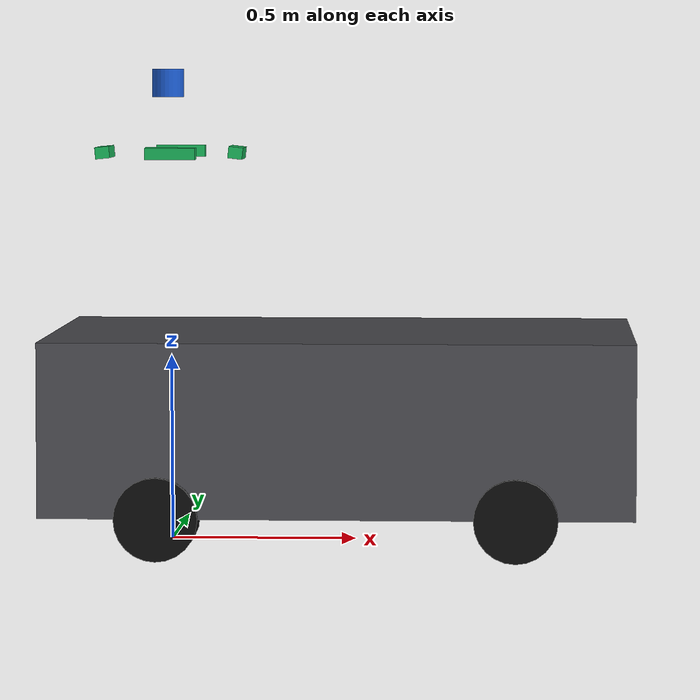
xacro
<?xml version="1.0"?>
<robot name="vehicle_1811" xmlns:xacro="http://www.ros.org/wiki/xacro">

  <xacro:include filename="$(find vehicle_1811_description)/urdf/materials.xacro"/>
  <xacro:include filename="$(find vehicle_1811_description)/urdf/vehicle_1811.macros.xacro"/>

  <xacro:property name="chassis_len"    value="1.56"/>  <!-- VISUAL  overall body length, bumper to bumper -->
  <xacro:property name="chassis_width"  value="0.93"/>  <!-- VISUAL  overall body width at the widest point -->
  <xacro:property name="chassis_height" value="0.46"/>  <!-- VISUAL  body box height (just for the drawing) -->

  <xacro:property name="wheel_base"   value="0.937"/> <!-- measured  front axle centre to rear axle centre, along x -->
  <xacro:property name="track_width"  value="0.87"/>  <!-- measured  left tyre centre to right tyre centre, along y -->
  <xacro:property name="wheel_radius" value="0.11"/>  <!-- TODO-MEASURE (matters later) tyre outer radius, ground to hub -->
  <xacro:property name="wheel_width"  value="0.096"/> <!-- measured  tyre width (visual) -->

  <xacro:property name="cam_plane_z" value="1.057"/>   <!-- TODO-MEASURE  camera lens height above ground -->
  <xacro:property name="lidar_z"     value="1.205"/>   <!-- TODO NEED TO FIX, not center point -->
   <!-- TODO-MEASURE (CRITICAL) lidar optical-origin height; a few inches above cam_plane_z -->

  <link name="base_footprint"/>
  <link name="base_link">
    <visual>
      <!-- Chassis box, drawn centred over the wheelbase and lifted to roughly
           axle height. Pure decoration so the model reads as a vehicle. -->
      <origin xyz="${wheel_base/2} 0 ${wheel_radius + chassis_height/2}" rpy="0 0 0"/>
      <geometry><box size="${chassis_len} ${chassis_width} ${chassis_height}"/></geometry>
      <material name="chassis_grey"/>
    </visual>
  </link>
  <joint name="base_footprint_joint" type="fixed">
    <parent link="base_footprint"/>
    <child link="base_link"/>
    <origin xyz="0 0 0" rpy="0 0 0"/>
  </joint>

  <xacro:wheel name="wheel_rear_left"   parent="base_link" x="0"             y="${ track_width/2}" z="${wheel_radius}" radius="${wheel_radius}" width="${wheel_width}"/>
  <xacro:wheel name="wheel_rear_right"  parent="base_link" x="0"             y="${-track_width/2}" z="${wheel_radius}" radius="${wheel_radius}" width="${wheel_width}"/>
  <xacro:wheel name="wheel_front_left"  parent="base_link" x="${wheel_base}" y="${ track_width/2}" z="${wheel_radius}" radius="${wheel_radius}" width="${wheel_width}"/>
  <xacro:wheel name="wheel_front_right" parent="base_link" x="${wheel_base}" y="${-track_width/2}" z="${wheel_radius}" radius="${wheel_radius}" width="${wheel_width}"/>

  <xacro:property name="lidar_x" value="0.006"/>  <!-- TODO-MEASURE (CRITICAL) lidar fwd of rear axle, along x -->
  <xacro:property name="lidar_y" value="-0.147"/>  <!-- TODO-MEASURE (CRITICAL) lidar lateral offset, +y=left, 0=centreline -->
  <xacro:ouster_os1 parent="base_link"
                    x="${lidar_x}" y="${lidar_y}" z="${lidar_z}"
                    roll="0" pitch="0" yaw="-0.079"/>   <!-- TODO-MEASURE (CRITICAL) mounting roll/pitch/yaw in radians -->

  <!-- FRONT camera (looks +x). -->
  <xacro:property name="cam_front_x"     value="0.190"/>  <!-- TODO-MEASURE  fwd of rear axle -->
  <xacro:property name="cam_front_y"     value="-0.145"/> <!-- TODO-MEASURE  lateral offset, +y=left -->
  <xacro:property name="cam_front_pitch" value="0.113"/>    <!-- TODO-MEASURE  down-tilt, + = nose down -->
  <xacro:zed_x_camera name="front" parent="base_link"
        x="${cam_front_x}" y="${cam_front_y}" z="${cam_plane_z}"
        roll="0" pitch="${cam_front_pitch}" yaw="0"/>

  <!-- LEFT camera (looks +y). -->
  <xacro:property name="cam_left_x"     value="0.025"/>   <!-- TODO-MEASURE  fwd of rear axle -->
  <xacro:property name="cam_left_y"     value="0.02"/>    <!-- TODO-MEASURE  lateral offset, +y=left -->
  <xacro:property name="cam_left_pitch" value="0.01"/>     <!-- TODO-MEASURE  down-tilt, + = nose down -->
  <xacro:zed_x_camera name="left" parent="base_link"
        x="${cam_left_x}" y="${cam_left_y}" z="${cam_plane_z}"
        roll="0" pitch="${cam_left_pitch}" yaw="${ pi/2}"/>

  <!-- REAR camera (looks -x). Tilted down more than the others. -->
  <xacro:property name="cam_rear_x"     value="-0.165"/>  <!-- TODO-MEASURE  fwd of rear axle (may be behind it -> negative) -->
  <xacro:property name="cam_rear_y"     value="-0.145"/>   <!-- TODO-MEASURE  lateral offset, +y=left -->
  <xacro:property name="cam_rear_pitch" value="0.097"/>     <!-- TODO-MEASURE  down-tilt, + = nose down (set larger than the rest) -->
  <xacro:zed_x_camera name="rear" parent="base_link"
        x="${cam_rear_x}" y="${cam_rear_y}" z="${cam_plane_z}"
        roll="0" pitch="${cam_rear_pitch}" yaw="${ pi}"/>

  <!-- RIGHT camera (looks -y). -->
  <xacro:property name="cam_right_x"     value="0.025"/>  <!-- TODO-MEASURE  fwd of rear axle -->
  <xacro:property name="cam_right_y"     value="-0.294"/> <!-- TODO-MEASURE  lateral offset, -y=right -->
  <xacro:property name="cam_right_pitch" value="0.04"/>    <!-- TODO-MEASURE  down-tilt, + = nose down -->
  <xacro:zed_x_camera name="right" parent="base_link"
        x="${cam_right_x}" y="${cam_right_y}" z="${cam_plane_z}"
        roll="0" pitch="${cam_right_pitch}" yaw="${-pi/2}"/>

</robot>

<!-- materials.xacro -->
<robot xmlns:xacro="http://www.ros.org/wiki/xacro">
  <!-- Shared visual materials (RGBA 0-1). Visual only; ignored by physics/TF. -->
  <material name="chassis_grey"><color rgba="0.30 0.30 0.32 1.0"/></material>
  <material name="wheel_black"><color rgba="0.05 0.05 0.05 1.0"/></material>
  <material name="lidar_blue"><color rgba="0.10 0.35 0.80 1.0"/></material>
  <material name="camera_green"><color rgba="0.10 0.70 0.35 1.0"/></material>
  <material name="mast_alu"><color rgba="0.65 0.65 0.68 1.0"/></material>
</robot>

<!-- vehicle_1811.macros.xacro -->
<robot xmlns:xacro="http://www.ros.org/wiki/xacro">

  <xacro:macro name="wheel" params="name parent x y z radius width">
    <link name="${name}">
      <visual>
        <!-- rotate cylinder so its axis lies along Y -->
        <origin xyz="0 0 0" rpy="${pi/2} 0 0"/>
        <geometry><cylinder radius="${radius}" length="${width}"/></geometry>
        <material name="wheel_black"/>
      </visual>
    </link>
    <joint name="${name}_joint" type="continuous">
      <parent link="${parent}"/>
      <child link="${name}"/>
      <origin xyz="${x} ${y} ${z}" rpy="0 0 0"/>
      <axis xyz="0 1 0"/>
    </joint>
  </xacro:macro>

  <xacro:macro name="ouster_os1" params="parent x y z roll pitch yaw
                                         housing_d:=0.085 housing_h:=0.074">
    <link name="os_sensor">
      <visual>
        <origin xyz="0 0 ${housing_h/2}" rpy="0 0 0"/>
        <geometry><cylinder radius="${housing_d/2}" length="${housing_h}"/></geometry>
        <material name="lidar_blue"/>
      </visual>
    </link>
    <joint name="os_sensor_mount" type="fixed">
      <parent link="${parent}"/>
      <child link="os_sensor"/>
      <origin xyz="${x} ${y} ${z}" rpy="${roll} ${pitch} ${yaw}"/>
    </joint>
  </xacro:macro>

  <xacro:macro name="zed_x_camera" params="name parent x y z roll pitch yaw
                                           body_x:=0.038 body_y:=0.133 body_z:=0.031">
    <link name="zed_${name}_camera_link">
      <visual>
        <origin xyz="0 0 0" rpy="0 0 0"/>
        <geometry><box size="${body_x} ${body_y} ${body_z}"/></geometry>
        <material name="camera_green"/>
      </visual>
    </link>
    <joint name="zed_${name}_mount" type="fixed">
      <parent link="${parent}"/>
      <child link="zed_${name}_camera_link"/>
      <origin xyz="${x} ${y} ${z}" rpy="${roll} ${pitch} ${yaw}"/>
    </joint>

    <!-- Optical frame: rotate body frame by (-90 about X, then -90 about Z)
         so +Z points out of the lens. Standard REP-103/145 convention. -->
    <link name="zed_${name}_optical_frame"/>
    <joint name="zed_${name}_optical_joint" type="fixed">
      <parent link="zed_${name}_camera_link"/>
      <child link="zed_${name}_optical_frame"/>
      <origin xyz="0 0 0" rpy="${-pi/2} 0 ${-pi/2}"/>
    </joint>
  </xacro:macro>

</robot>
